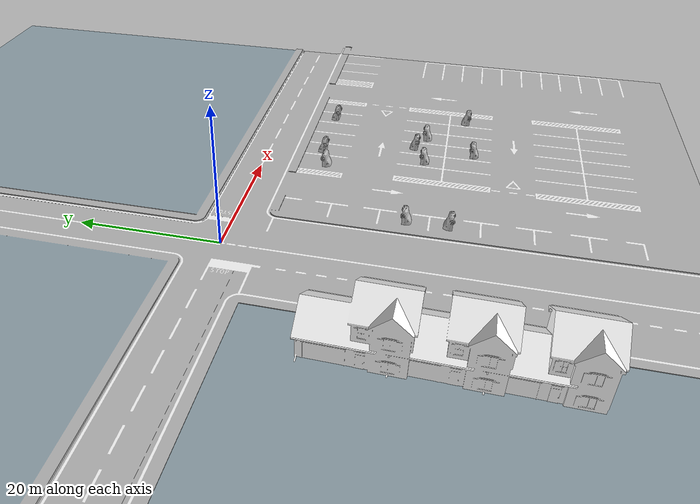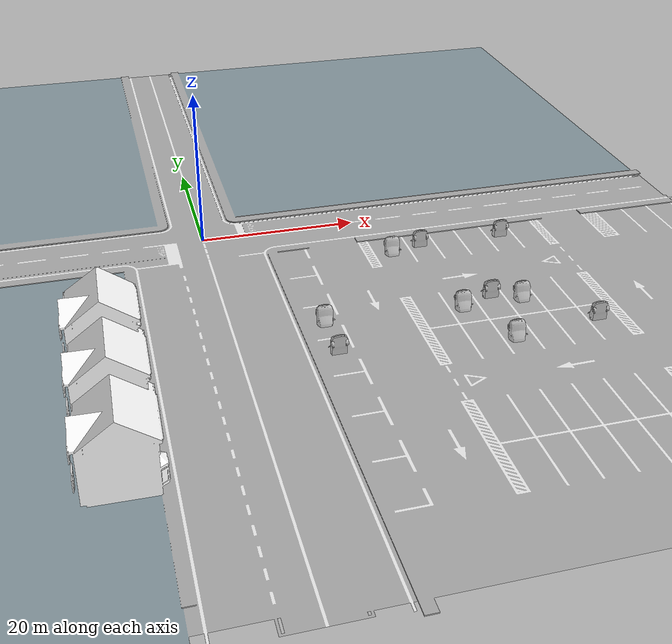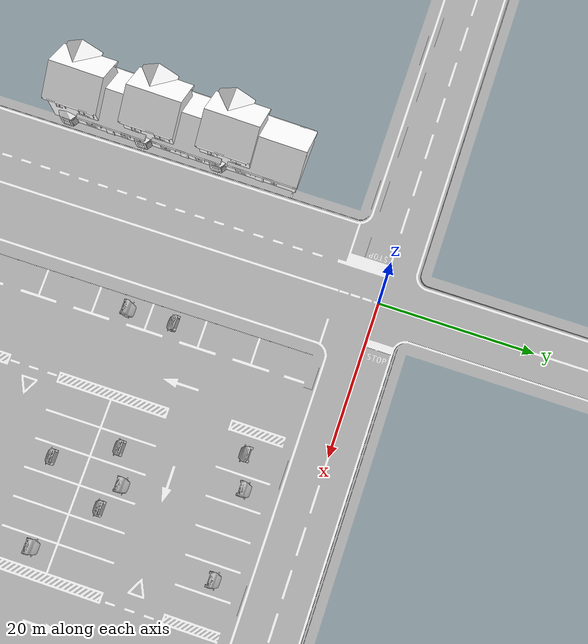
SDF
<sdf version="1.5">
 <world name="default">
  <scene><grid>false</grid></scene>
  <include><uri>model://sun</uri><pose>1.5 -30 100 0 0 0</pose></include>
  <include><uri>model://house_3</uri><name>house3_2</name><pose>-14 -20 0 0 0 1.55</pose></include>
  <include><uri>model://house_3</uri><name>house3_3</name><pose>-14 -30 0 0 0 1.55</pose></include>
  <include><uri>model://house_3</uri><name>house3_4</name><pose>-14 -40 0 0 0 1.55</pose></include>
  <include>
   <uri>model://opel</uri>
   <name>car16</name>
   <pose>22.8 -8.9 0 0 0 3.1415</pose>
   <static>true</static>
  </include>
  <include><uri>model://opel</uri><name>car17</name><pose>26.8 -9 0 0 0 0</pose><static>true</static></include>
  <include><uri>model://opel</uri><name>car18</name><pose>37.85 -9 0 0 0 0</pose><static>true</static></include>
  <include>
   <uri>model://opel</uri>
   <name>car19</name>
   <pose>26.85 -23.5 0 0 0 3.1415</pose>
   <static>true</static>
  </include>
  <include><uri>model://opel</uri><name>car20</name><pose>30.9 -23 0 0 0 0</pose><static>true</static></include>
  <include>
   <uri>model://opel</uri>
   <name>car21</name>
   <pose>34.3 -23.3 0 0 0 3.1415</pose>
   <static>true</static>
  </include>
  <include><uri>model://opel</uri><name>car22</name><pose>41 -30.6 0 0 0 0</pose><static>true</static></include>
  <include>
   <uri>model://opel</uri>
   <name>car23</name>
   <pose>30.4 -30.85 0 0 0 3.1415</pose>
   <static>true</static>
  </include>
  <include>
   <uri>model://opel</uri>
   <name>car24</name>
   <pose>10.5 -22.5 0 0 0 3.1415</pose>
   <static>true</static>
  </include>
  <include>
   <uri>model://opel</uri>
   <name>car25</name>
   <pose>10.5 -29.67 0 0 0 0</pose>
   <static>true</static>
  </include>
  <include><uri>model://parking</uri><pose>0 0 0 0 0 -1.5708</pose></include>
 </world>
</sdf>

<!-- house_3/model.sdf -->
<sdf version="1.5">
  <model name="House 3">
    <static>true</static>
    <link name="link">
      <collision name="collision">
        <geometry>
          <mesh>
            <uri>model://house_3/meshes/house_3.dae</uri>
            <scale>1.5 1.5 1.5</scale>
          </mesh>
        </geometry>
      </collision>
      <visual name="visual">
        <geometry>
          <mesh>
            <uri>model://house_3/meshes/house_3.dae</uri>
            <scale>1.5 1.5 1.5</scale>
          </mesh>
        </geometry>
        <material>
          <diffuse>1.0 1.0 1.0 1.0</diffuse>
          <specular>0.0 0.0 0.0 1.0</specular>
          <pbr>
            <metal>
              <albedo_map>model://house_3/materials/textures/house_3.png</albedo_map>
            </metal>
          </pbr>
        </material>
      </visual>
    </link>
  </model>
</sdf>

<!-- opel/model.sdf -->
<sdf version="1.4">
<model name="opel">
  <pose>0 0 0.5 0 0 0</pose>
  <static>true</static>

  <link name="opel">
      <gravity>0</gravity> <!-- No hace falta gravedad para estático -->
      <collision name="collision">
          <geometry>
              <mesh>
                  <uri>model://opel/meshes/model.obj</uri>
              </mesh>
          </geometry>
      </collision>
      <visual name="visual">
          <geometry>
              <mesh>
                  <uri>model://opel/meshes/model.obj</uri>
              </mesh>
          </geometry>
      </visual>
  </link>

  <!-- Plugins de control o sensores no necesarios para estático -->

  <!-- Cámaras -->

</model>
</sdf>

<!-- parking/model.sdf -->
<sdf version="1.5">
  <model name="stop">
    <static>true</static>
    <link name="link">
      <collision name="collision">
        <geometry>
          <plane>
            <normal>0 0 1</normal>
            <size>100 100</size>
          </plane>
        </geometry>
      </collision>
      <visual name="visual">
        <geometry>
          <mesh>
	          <uri>model://parking/meshes/parking.dae</uri>
            <scale>1.3 1.3 1.3</scale>
          </mesh>
        </geometry>
      </visual>
    </link>
  </model>
</sdf>
